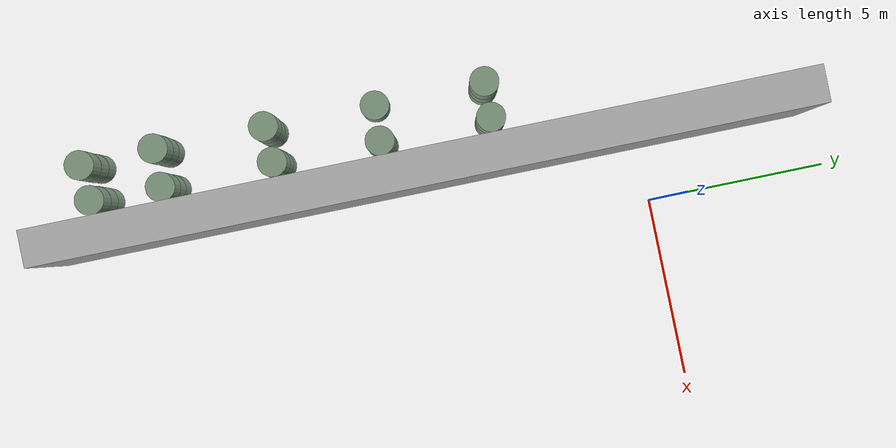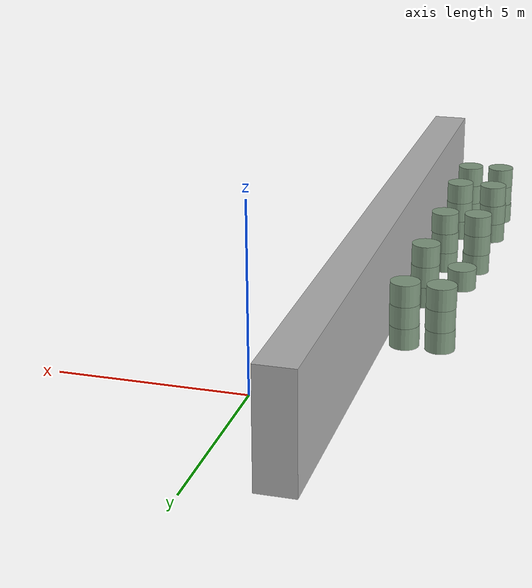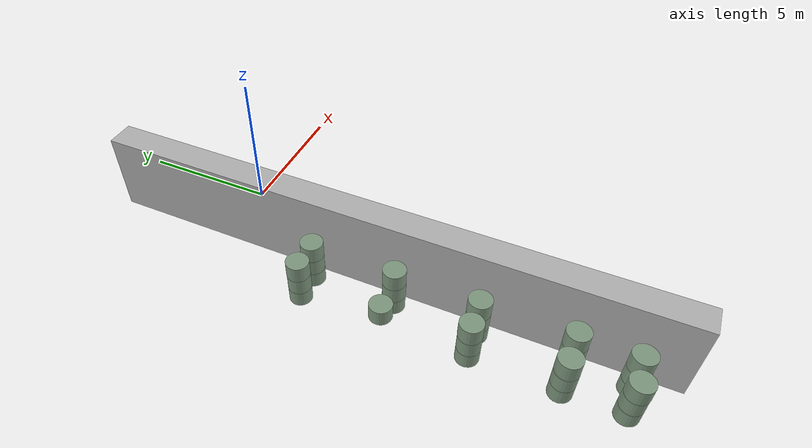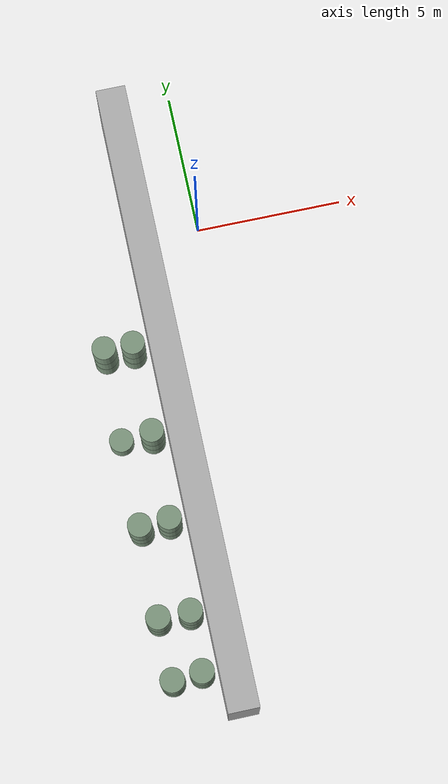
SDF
<sdf version="1.6">
 <world name="default">
  <model name="wall_4">
   <pose frame="sim_world">-2.0 -6.0 1.5 0 0 0</pose>
   <static>True</static>
   <link name="wall_4_link">
    <inertial>
     <mass>100</mass>
     <inertia>
      <ixx>0.166667</ixx>
      <ixy>0</ixy>
      <ixz>0</ixz>
      <iyy>0.166667</iyy>
      <iyz>0</iyz>
      <izz>0.166667</izz>
     </inertia>
    </inertial>
    <collision name="wall_4_collision">
     <geometry><box><size>1.0 21.0 3.0</size></box></geometry>
     <max_contacts>100</max_contacts>
    </collision>
    <visual name="wall_4_visual">
     <geometry><box><size>1.0 21.0 3.0</size></box></geometry>
     <material><ambient>0.7 0.7 0.7 1</ambient><diffuse>0.7 0.7 0.7 1</diffuse></material>
    </visual>
   </link>
  </model>
  <model name="cylinder_96">
   <pose frame="sim_world">-3.97434715581 -15.0098099933 0.3 0 -0 0</pose>
   <static>True</static>
   <link name="cylinder_96_link">
    <inertial>
     <mass>100</mass>
     <inertia><ixx>0.145833</ixx><ixy>0</ixy><ixz>0</ixz><iyy>0.145833</iyy><iyz>0</iyz><izz>0.125</izz></inertia>
    </inertial>
    <collision name="cylinder_96_collision">
     <geometry><cylinder><length>0.6</length><radius>0.4</radius></cylinder></geometry>
     <max_contacts>100</max_contacts>
    </collision>
    <visual name="cylinder_96_visual">
     <geometry><cylinder><length>0.6</length><radius>0.4</radius></cylinder></geometry>
     <material><ambient>0.5 0.6 0.5 1</ambient><diffuse>0.5 0.6 0.5 1</diffuse></material>
    </visual>
   </link>
  </model>
  <model name="cylinder_97">
   <pose frame="sim_world">-3.96317434991 -15.0131343072 0.9 0 -0 0</pose>
   <static>True</static>
   <link name="cylinder_97_link">
    <inertial>
     <mass>100</mass>
     <inertia><ixx>0.145833</ixx><ixy>0</ixy><ixz>0</ixz><iyy>0.145833</iyy><iyz>0</iyz><izz>0.125</izz></inertia>
    </inertial>
    <collision name="cylinder_97_collision">
     <geometry><cylinder><length>0.6</length><radius>0.4</radius></cylinder></geometry>
     <max_contacts>100</max_contacts>
    </collision>
    <visual name="cylinder_97_visual">
     <geometry><cylinder><length>0.6</length><radius>0.4</radius></cylinder></geometry>
     <material><ambient>0.5 0.6 0.5 1</ambient><diffuse>0.5 0.6 0.5 1</diffuse></material>
    </visual>
   </link>
  </model>
  <model name="cylinder_98">
   <pose frame="sim_world">-3.97127461932 -15.023205445 1.5 0 -0 0</pose>
   <static>True</static>
   <link name="cylinder_98_link">
    <inertial>
     <mass>100</mass>
     <inertia><ixx>0.145833</ixx><ixy>0</ixy><ixz>0</ixz><iyy>0.145833</iyy><iyz>0</iyz><izz>0.125</izz></inertia>
    </inertial>
    <collision name="cylinder_98_collision">
     <geometry><cylinder><length>0.6</length><radius>0.4</radius></cylinder></geometry>
     <max_contacts>100</max_contacts>
    </collision>
    <visual name="cylinder_98_visual">
     <geometry><cylinder><length>0.6</length><radius>0.4</radius></cylinder></geometry>
     <material><ambient>0.5 0.6 0.5 1</ambient><diffuse>0.5 0.6 0.5 1</diffuse></material>
    </visual>
   </link>
  </model>
  <model name="cylinder_99">
   <pose frame="sim_world">-4.02600683005 -13.0129427664 0.3 0 -0 0</pose>
   <static>True</static>
   <link name="cylinder_99_link">
    <inertial>
     <mass>100</mass>
     <inertia><ixx>0.145833</ixx><ixy>0</ixy><ixz>0</ixz><iyy>0.145833</iyy><iyz>0</iyz><izz>0.125</izz></inertia>
    </inertial>
    <collision name="cylinder_99_collision">
     <geometry><cylinder><length>0.6</length><radius>0.4</radius></cylinder></geometry>
     <max_contacts>100</max_contacts>
    </collision>
    <visual name="cylinder_99_visual">
     <geometry><cylinder><length>0.6</length><radius>0.4</radius></cylinder></geometry>
     <material><ambient>0.5 0.6 0.5 1</ambient><diffuse>0.5 0.6 0.5 1</diffuse></material>
    </visual>
   </link>
  </model>
  <model name="cylinder_100">
   <pose frame="sim_world">-4.03086776335 -13.0126779504 0.9 0 -0 0</pose>
   <static>True</static>
   <link name="cylinder_100_link">
    <inertial>
     <mass>100</mass>
     <inertia><ixx>0.145833</ixx><ixy>0</ixy><ixz>0</ixz><iyy>0.145833</iyy><iyz>0</iyz><izz>0.125</izz></inertia>
    </inertial>
    <collision name="cylinder_100_collision">
     <geometry><cylinder><length>0.6</length><radius>0.4</radius></cylinder></geometry>
     <max_contacts>100</max_contacts>
    </collision>
    <visual name="cylinder_100_visual">
     <geometry><cylinder><length>0.6</length><radius>0.4</radius></cylinder></geometry>
     <material><ambient>0.5 0.6 0.5 1</ambient><diffuse>0.5 0.6 0.5 1</diffuse></material>
    </visual>
   </link>
  </model>
  <model name="cylinder_101">
   <pose frame="sim_world">-4.01185579684 -13.0079262709 1.5 0 -0 0</pose>
   <static>True</static>
   <link name="cylinder_101_link">
    <inertial>
     <mass>100</mass>
     <inertia><ixx>0.145833</ixx><ixy>0</ixy><ixz>0</ixz><iyy>0.145833</iyy><iyz>0</iyz><izz>0.125</izz></inertia>
    </inertial>
    <collision name="cylinder_101_collision">
     <geometry><cylinder><length>0.6</length><radius>0.4</radius></cylinder></geometry>
     <max_contacts>100</max_contacts>
    </collision>
    <visual name="cylinder_101_visual">
     <geometry><cylinder><length>0.6</length><radius>0.4</radius></cylinder></geometry>
     <material><ambient>0.5 0.6 0.5 1</ambient><diffuse>0.5 0.6 0.5 1</diffuse></material>
    </visual>
   </link>
  </model>
  <model name="cylinder_102">
   <pose frame="sim_world">-3.98188915721 -10.013250989 0.3 0 -0 0</pose>
   <static>True</static>
   <link name="cylinder_102_link">
    <inertial>
     <mass>100</mass>
     <inertia><ixx>0.145833</ixx><ixy>0</ixy><ixz>0</ixz><iyy>0.145833</iyy><iyz>0</iyz><izz>0.125</izz></inertia>
    </inertial>
    <collision name="cylinder_102_collision">
     <geometry><cylinder><length>0.6</length><radius>0.4</radius></cylinder></geometry>
     <max_contacts>100</max_contacts>
    </collision>
    <visual name="cylinder_102_visual">
     <geometry><cylinder><length>0.6</length><radius>0.4</radius></cylinder></geometry>
     <material><ambient>0.5 0.6 0.5 1</ambient><diffuse>0.5 0.6 0.5 1</diffuse></material>
    </visual>
   </link>
  </model>
  <model name="cylinder_103">
   <pose frame="sim_world">-3.99733306049 -10.0159751063 0.9 0 -0 0</pose>
   <static>True</static>
   <link name="cylinder_103_link">
    <inertial>
     <mass>100</mass>
     <inertia><ixx>0.145833</ixx><ixy>0</ixy><ixz>0</ixz><iyy>0.145833</iyy><iyz>0</iyz><izz>0.125</izz></inertia>
    </inertial>
    <collision name="cylinder_103_collision">
     <geometry><cylinder><length>0.6</length><radius>0.4</radius></cylinder></geometry>
     <max_contacts>100</max_contacts>
    </collision>
    <visual name="cylinder_103_visual">
     <geometry><cylinder><length>0.6</length><radius>0.4</radius></cylinder></geometry>
     <material><ambient>0.5 0.6 0.5 1</ambient><diffuse>0.5 0.6 0.5 1</diffuse></material>
    </visual>
   </link>
  </model>
  <model name="cylinder_104">
   <pose frame="sim_world">-3.9968707419 -10.0056302711 1.5 0 -0 0</pose>
   <static>True</static>
   <link name="cylinder_104_link">
    <inertial>
     <mass>100</mass>
     <inertia><ixx>0.145833</ixx><ixy>0</ixy><ixz>0</ixz><iyy>0.145833</iyy><iyz>0</iyz><izz>0.125</izz></inertia>
    </inertial>
    <collision name="cylinder_104_collision">
     <geometry><cylinder><length>0.6</length><radius>0.4</radius></cylinder></geometry>
     <max_contacts>100</max_contacts>
    </collision>
    <visual name="cylinder_104_visual">
     <geometry><cylinder><length>0.6</length><radius>0.4</radius></cylinder></geometry>
     <material><ambient>0.5 0.6 0.5 1</ambient><diffuse>0.5 0.6 0.5 1</diffuse></material>
    </visual>
   </link>
  </model>
  <model name="cylinder_106">
   <pose frame="sim_world">-4.02993855264 -7.01563548362 0.9 0 -0 0</pose>
   <static>True</static>
   <link name="cylinder_106_link">
    <inertial>
     <mass>100</mass>
     <inertia><ixx>0.145833</ixx><ixy>0</ixy><ixz>0</ixz><iyy>0.145833</iyy><iyz>0</iyz><izz>0.125</izz></inertia>
    </inertial>
    <collision name="cylinder_106_collision">
     <geometry><cylinder><length>0.6</length><radius>0.4</radius></cylinder></geometry>
     <max_contacts>100</max_contacts>
    </collision>
    <visual name="cylinder_106_visual">
     <geometry><cylinder><length>0.6</length><radius>0.4</radius></cylinder></geometry>
     <material><ambient>0.5 0.6 0.5 1</ambient><diffuse>0.5 0.6 0.5 1</diffuse></material>
    </visual>
   </link>
  </model>
  <model name="cylinder_108">
   <pose frame="sim_world">-3.97730473726 -3.99942619545 0.3 0 -0 0</pose>
   <static>True</static>
   <link name="cylinder_108_link">
    <inertial>
     <mass>100</mass>
     <inertia><ixx>0.145833</ixx><ixy>0</ixy><ixz>0</ixz><iyy>0.145833</iyy><iyz>0</iyz><izz>0.125</izz></inertia>
    </inertial>
    <collision name="cylinder_108_collision">
     <geometry><cylinder><length>0.6</length><radius>0.4</radius></cylinder></geometry>
     <max_contacts>100</max_contacts>
    </collision>
    <visual name="cylinder_108_visual">
     <geometry><cylinder><length>0.6</length><radius>0.4</radius></cylinder></geometry>
     <material><ambient>0.5 0.6 0.5 1</ambient><diffuse>0.5 0.6 0.5 1</diffuse></material>
    </visual>
   </link>
  </model>
  <model name="cylinder_109">
   <pose frame="sim_world">-3.96981555724 -3.99259190289 0.9 0 -0 0</pose>
   <static>True</static>
   <link name="cylinder_109_link">
    <inertial>
     <mass>100</mass>
     <inertia><ixx>0.145833</ixx><ixy>0</ixy><ixz>0</ixz><iyy>0.145833</iyy><iyz>0</iyz><izz>0.125</izz></inertia>
    </inertial>
    <collision name="cylinder_109_collision">
     <geometry><cylinder><length>0.6</length><radius>0.4</radius></cylinder></geometry>
     <max_contacts>100</max_contacts>
    </collision>
    <visual name="cylinder_109_visual">
     <geometry><cylinder><length>0.6</length><radius>0.4</radius></cylinder></geometry>
     <material><ambient>0.5 0.6 0.5 1</ambient><diffuse>0.5 0.6 0.5 1</diffuse></material>
    </visual>
   </link>
  </model>
  <model name="cylinder_110">
   <pose frame="sim_world">-3.9783778329 -3.98945076786 1.5 0 -0 0</pose>
   <static>True</static>
   <link name="cylinder_110_link">
    <inertial>
     <mass>100</mass>
     <inertia><ixx>0.145833</ixx><ixy>0</ixy><ixz>0</ixz><iyy>0.145833</iyy><iyz>0</iyz><izz>0.125</izz></inertia>
    </inertial>
    <collision name="cylinder_110_collision">
     <geometry><cylinder><length>0.6</length><radius>0.4</radius></cylinder></geometry>
     <max_contacts>100</max_contacts>
    </collision>
    <visual name="cylinder_110_visual">
     <geometry><cylinder><length>0.6</length><radius>0.4</radius></cylinder></geometry>
     <material><ambient>0.5 0.6 0.5 1</ambient><diffuse>0.5 0.6 0.5 1</diffuse></material>
    </visual>
   </link>
  </model>
  <model name="cylinder_138">
   <pose frame="sim_world">-3.00667436374 -14.9494284898 0.3 0 -0 0</pose>
   <static>True</static>
   <link name="cylinder_138_link">
    <inertial>
     <mass>100</mass>
     <inertia><ixx>0.145833</ixx><ixy>0</ixy><ixz>0</ixz><iyy>0.145833</iyy><iyz>0</iyz><izz>0.125</izz></inertia>
    </inertial>
    <collision name="cylinder_138_collision">
     <geometry><cylinder><length>0.6</length><radius>0.4</radius></cylinder></geometry>
     <max_contacts>100</max_contacts>
    </collision>
    <visual name="cylinder_138_visual">
     <geometry><cylinder><length>0.6</length><radius>0.4</radius></cylinder></geometry>
     <material><ambient>0.5 0.6 0.5 1</ambient><diffuse>0.5 0.6 0.5 1</diffuse></material>
    </visual>
   </link>
  </model>
  <model name="cylinder_139">
   <pose frame="sim_world">-3.01646008534 -14.9460807494 0.9 0 -0 0</pose>
   <static>True</static>
   <link name="cylinder_139_link">
    <inertial>
     <mass>100</mass>
     <inertia><ixx>0.145833</ixx><ixy>0</ixy><ixz>0</ixz><iyy>0.145833</iyy><iyz>0</iyz><izz>0.125</izz></inertia>
    </inertial>
    <collision name="cylinder_139_collision">
     <geometry><cylinder><length>0.6</length><radius>0.4</radius></cylinder></geometry>
     <max_contacts>100</max_contacts>
    </collision>
    <visual name="cylinder_139_visual">
     <geometry><cylinder><length>0.6</length><radius>0.4</radius></cylinder></geometry>
     <material><ambient>0.5 0.6 0.5 1</ambient><diffuse>0.5 0.6 0.5 1</diffuse></material>
    </visual>
   </link>
  </model>
  <model name="cylinder_140">
   <pose frame="sim_world">-3.00443655025 -14.9443725733 1.5 0 -0 0</pose>
   <static>True</static>
   <link name="cylinder_140_link">
    <inertial>
     <mass>100</mass>
     <inertia><ixx>0.145833</ixx><ixy>0</ixy><ixz>0</ixz><iyy>0.145833</iyy><iyz>0</iyz><izz>0.125</izz></inertia>
    </inertial>
    <collision name="cylinder_140_collision">
     <geometry><cylinder><length>0.6</length><radius>0.4</radius></cylinder></geometry>
     <max_contacts>100</max_contacts>
    </collision>
    <visual name="cylinder_140_visual">
     <geometry><cylinder><length>0.6</length><radius>0.4</radius></cylinder></geometry>
     <material><ambient>0.5 0.6 0.5 1</ambient><diffuse>0.5 0.6 0.5 1</diffuse></material>
    </visual>
   </link>
  </model>
  <model name="cylinder_141">
   <pose frame="sim_world">-2.98378669334 -13.0309681433 0.3 0 -0 0</pose>
   <static>True</static>
   <link name="cylinder_141_link">
    <inertial>
     <mass>100</mass>
     <inertia><ixx>0.145833</ixx><ixy>0</ixy><ixz>0</ixz><iyy>0.145833</iyy><iyz>0</iyz><izz>0.125</izz></inertia>
    </inertial>
    <collision name="cylinder_141_collision">
     <geometry><cylinder><length>0.6</length><radius>0.4</radius></cylinder></geometry>
     <max_contacts>100</max_contacts>
    </collision>
    <visual name="cylinder_141_visual">
     <geometry><cylinder><length>0.6</length><radius>0.4</radius></cylinder></geometry>
     <material><ambient>0.5 0.6 0.5 1</ambient><diffuse>0.5 0.6 0.5 1</diffuse></material>
    </visual>
   </link>
  </model>
  <model name="cylinder_142">
   <pose frame="sim_world">-2.96900163082 -13.0297201819 0.9 0 -0 0</pose>
   <static>True</static>
   <link name="cylinder_142_link">
    <inertial>
     <mass>100</mass>
     <inertia><ixx>0.145833</ixx><ixy>0</ixy><ixz>0</ixz><iyy>0.145833</iyy><iyz>0</iyz><izz>0.125</izz></inertia>
    </inertial>
    <collision name="cylinder_142_collision">
     <geometry><cylinder><length>0.6</length><radius>0.4</radius></cylinder></geometry>
     <max_contacts>100</max_contacts>
    </collision>
    <visual name="cylinder_142_visual">
     <geometry><cylinder><length>0.6</length><radius>0.4</radius></cylinder></geometry>
     <material><ambient>0.5 0.6 0.5 1</ambient><diffuse>0.5 0.6 0.5 1</diffuse></material>
    </visual>
   </link>
  </model>
  <model name="cylinder_143">
   <pose frame="sim_world">-2.97044075444 -13.0185209899 1.5 0 -0 0</pose>
   <static>True</static>
   <link name="cylinder_143_link">
    <inertial>
     <mass>100</mass>
     <inertia><ixx>0.145833</ixx><ixy>0</ixy><ixz>0</ixz><iyy>0.145833</iyy><iyz>0</iyz><izz>0.125</izz></inertia>
    </inertial>
    <collision name="cylinder_143_collision">
     <geometry><cylinder><length>0.6</length><radius>0.4</radius></cylinder></geometry>
     <max_contacts>100</max_contacts>
    </collision>
    <visual name="cylinder_143_visual">
     <geometry><cylinder><length>0.6</length><radius>0.4</radius></cylinder></geometry>
     <material><ambient>0.5 0.6 0.5 1</ambient><diffuse>0.5 0.6 0.5 1</diffuse></material>
    </visual>
   </link>
  </model>
  <model name="cylinder_144">
   <pose frame="sim_world">-3.03006763154 -9.97629689664 0.3 0 -0 0</pose>
   <static>True</static>
   <link name="cylinder_144_link">
    <inertial>
     <mass>100</mass>
     <inertia><ixx>0.145833</ixx><ixy>0</ixy><ixz>0</ixz><iyy>0.145833</iyy><iyz>0</iyz><izz>0.125</izz></inertia>
    </inertial>
    <collision name="cylinder_144_collision">
     <geometry><cylinder><length>0.6</length><radius>0.4</radius></cylinder></geometry>
     <max_contacts>100</max_contacts>
    </collision>
    <visual name="cylinder_144_visual">
     <geometry><cylinder><length>0.6</length><radius>0.4</radius></cylinder></geometry>
     <material><ambient>0.5 0.6 0.5 1</ambient><diffuse>0.5 0.6 0.5 1</diffuse></material>
    </visual>
   </link>
  </model>
  <model name="cylinder_145">
   <pose frame="sim_world">-3.03722382602 -9.96976507608 0.9 0 -0 0</pose>
   <static>True</static>
   <link name="cylinder_145_link">
    <inertial>
     <mass>100</mass>
     <inertia><ixx>0.145833</ixx><ixy>0</ixy><ixz>0</ixz><iyy>0.145833</iyy><iyz>0</iyz><izz>0.125</izz></inertia>
    </inertial>
    <collision name="cylinder_145_collision">
     <geometry><cylinder><length>0.6</length><radius>0.4</radius></cylinder></geometry>
     <max_contacts>100</max_contacts>
    </collision>
    <visual name="cylinder_145_visual">
     <geometry><cylinder><length>0.6</length><radius>0.4</radius></cylinder></geometry>
     <material><ambient>0.5 0.6 0.5 1</ambient><diffuse>0.5 0.6 0.5 1</diffuse></material>
    </visual>
   </link>
  </model>
  <model name="cylinder_146">
   <pose frame="sim_world">-3.01864007052 -9.96437196115 1.5 0 -0 0</pose>
   <static>True</static>
   <link name="cylinder_146_link">
    <inertial>
     <mass>100</mass>
     <inertia><ixx>0.145833</ixx><ixy>0</ixy><ixz>0</ixz><iyy>0.145833</iyy><iyz>0</iyz><izz>0.125</izz></inertia>
    </inertial>
    <collision name="cylinder_146_collision">
     <geometry><cylinder><length>0.6</length><radius>0.4</radius></cylinder></geometry>
     <max_contacts>100</max_contacts>
    </collision>
    <visual name="cylinder_146_visual">
     <geometry><cylinder><length>0.6</length><radius>0.4</radius></cylinder></geometry>
     <material><ambient>0.5 0.6 0.5 1</ambient><diffuse>0.5 0.6 0.5 1</diffuse></material>
    </visual>
   </link>
  </model>
  <model name="cylinder_147">
   <pose frame="sim_world">-2.9959960453 -7.03419131954 0.3 0 -0 0</pose>
   <static>True</static>
   <link name="cylinder_147_link">
    <inertial>
     <mass>100</mass>
     <inertia><ixx>0.145833</ixx><ixy>0</ixy><ixz>0</ixz><iyy>0.145833</iyy><iyz>0</iyz><izz>0.125</izz></inertia>
    </inertial>
    <collision name="cylinder_147_collision">
     <geometry><cylinder><length>0.6</length><radius>0.4</radius></cylinder></geometry>
     <max_contacts>100</max_contacts>
    </collision>
    <visual name="cylinder_147_visual">
     <geometry><cylinder><length>0.6</length><radius>0.4</radius></cylinder></geometry>
     <material><ambient>0.5 0.6 0.5 1</ambient><diffuse>0.5 0.6 0.5 1</diffuse></material>
    </visual>
   </link>
  </model>
  <model name="cylinder_148">
   <pose frame="sim_world">-2.98660227112 -7.04324826543 0.9 0 -0 0</pose>
   <static>True</static>
   <link name="cylinder_148_link">
    <inertial>
     <mass>100</mass>
     <inertia><ixx>0.145833</ixx><ixy>0</ixy><ixz>0</ixz><iyy>0.145833</iyy><iyz>0</iyz><izz>0.125</izz></inertia>
    </inertial>
    <collision name="cylinder_148_collision">
     <geometry><cylinder><length>0.6</length><radius>0.4</radius></cylinder></geometry>
     <max_contacts>100</max_contacts>
    </collision>
    <visual name="cylinder_148_visual">
     <geometry><cylinder><length>0.6</length><radius>0.4</radius></cylinder></geometry>
     <material><ambient>0.5 0.6 0.5 1</ambient><diffuse>0.5 0.6 0.5 1</diffuse></material>
    </visual>
   </link>
  </model>
  <model name="cylinder_149">
   <pose frame="sim_world">-2.99451939756 -7.03820559801 1.5 0 -0 0</pose>
   <static>True</static>
   <link name="cylinder_149_link">
    <inertial>
     <mass>100</mass>
     <inertia><ixx>0.145833</ixx><ixy>0</ixy><ixz>0</ixz><iyy>0.145833</iyy><iyz>0</iyz><izz>0.125</izz></inertia>
    </inertial>
    <collision name="cylinder_149_collision">
     <geometry><cylinder><length>0.6</length><radius>0.4</radius></cylinder></geometry>
     <max_contacts>100</max_contacts>
    </collision>
    <visual name="cylinder_149_visual">
     <geometry><cylinder><length>0.6</length><radius>0.4</radius></cylinder></geometry>
     <material><ambient>0.5 0.6 0.5 1</ambient><diffuse>0.5 0.6 0.5 1</diffuse></material>
    </visual>
   </link>
  </model>
  <model name="cylinder_150">
   <pose frame="sim_world">-3.02530706198 -4.01192630483 0.3 0 -0 0</pose>
   <static>True</static>
   <link name="cylinder_150_link">
    <inertial>
     <mass>100</mass>
     <inertia><ixx>0.145833</ixx><ixy>0</ixy><ixz>0</ixz><iyy>0.145833</iyy><iyz>0</iyz><izz>0.125</izz></inertia>
    </inertial>
    <collision name="cylinder_150_collision">
     <geometry><cylinder><length>0.6</length><radius>0.4</radius></cylinder></geometry>
     <max_contacts>100</max_contacts>
    </collision>
    <visual name="cylinder_150_visual">
     <geometry><cylinder><length>0.6</length><radius>0.4</radius></cylinder></geometry>
     <material><ambient>0.5 0.6 0.5 1</ambient><diffuse>0.5 0.6 0.5 1</diffuse></material>
    </visual>
   </link>
  </model>
  <model name="cylinder_151">
   <pose frame="sim_world">-3.0150505353 -3.99971511578 0.9 0 -0 0</pose>
   <static>True</static>
   <link name="cylinder_151_link">
    <inertial>
     <mass>100</mass>
     <inertia><ixx>0.145833</ixx><ixy>0</ixy><ixz>0</ixz><iyy>0.145833</iyy><iyz>0</iyz><izz>0.125</izz></inertia>
    </inertial>
    <collision name="cylinder_151_collision">
     <geometry><cylinder><length>0.6</length><radius>0.4</radius></cylinder></geometry>
     <max_contacts>100</max_contacts>
    </collision>
    <visual name="cylinder_151_visual">
     <geometry><cylinder><length>0.6</length><radius>0.4</radius></cylinder></geometry>
     <material><ambient>0.5 0.6 0.5 1</ambient><diffuse>0.5 0.6 0.5 1</diffuse></material>
    </visual>
   </link>
  </model>
  <model name="cylinder_152">
   <pose frame="sim_world">-3.01508040265 -4.00235621058 1.5 0 -0 0</pose>
   <static>True</static>
   <link name="cylinder_152_link">
    <inertial>
     <mass>100</mass>
     <inertia><ixx>0.145833</ixx><ixy>0</ixy><ixz>0</ixz><iyy>0.145833</iyy><iyz>0</iyz><izz>0.125</izz></inertia>
    </inertial>
    <collision name="cylinder_152_collision">
     <geometry><cylinder><length>0.6</length><radius>0.4</radius></cylinder></geometry>
     <max_contacts>100</max_contacts>
    </collision>
    <visual name="cylinder_152_visual">
     <geometry><cylinder><length>0.6</length><radius>0.4</radius></cylinder></geometry>
     <material><ambient>0.5 0.6 0.5 1</ambient><diffuse>0.5 0.6 0.5 1</diffuse></material>
    </visual>
   </link>
  </model>
  <model name="ground_plane"><link name="ground_plane"/></model>
 </world>
</sdf>
